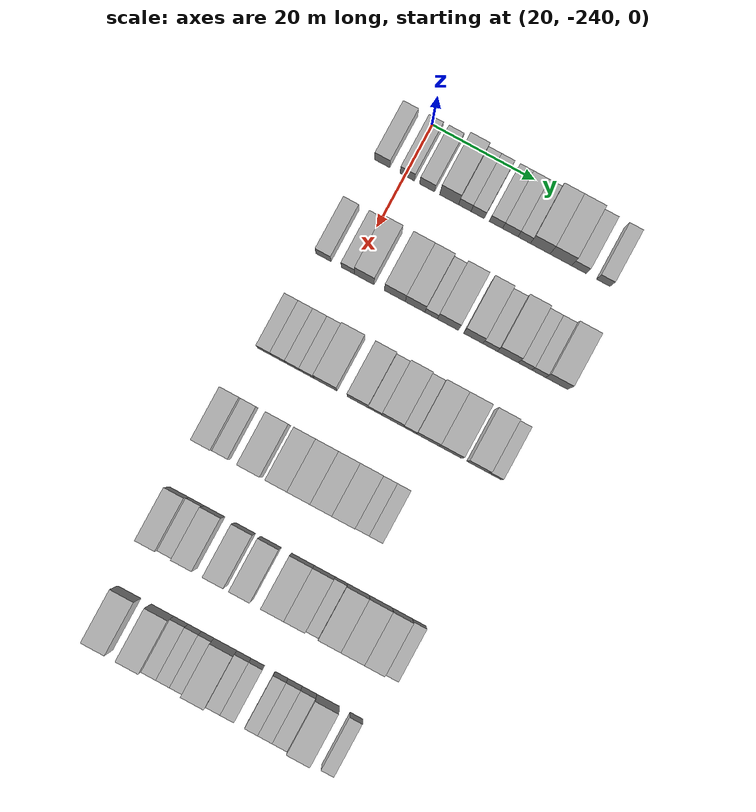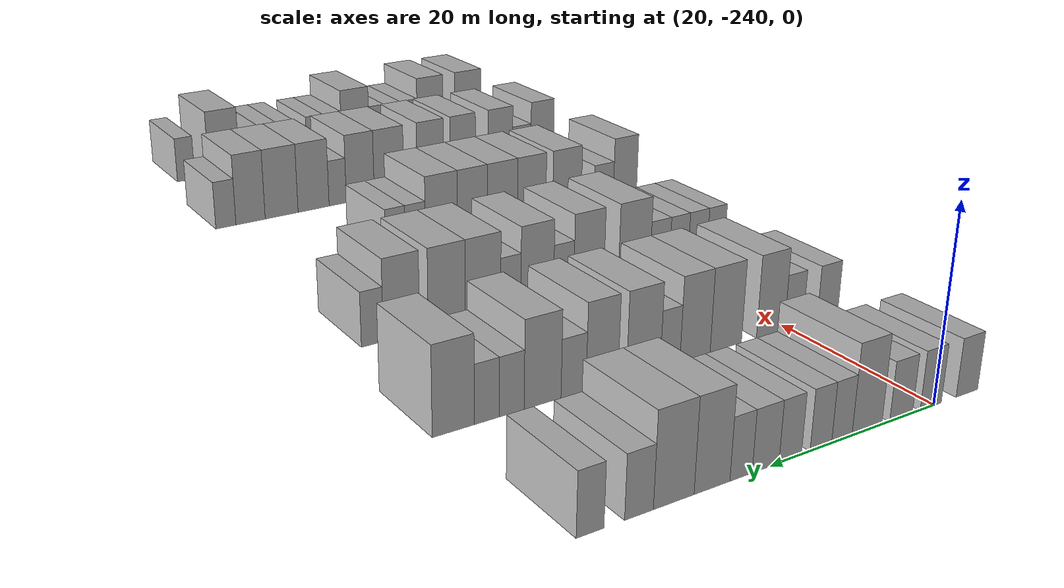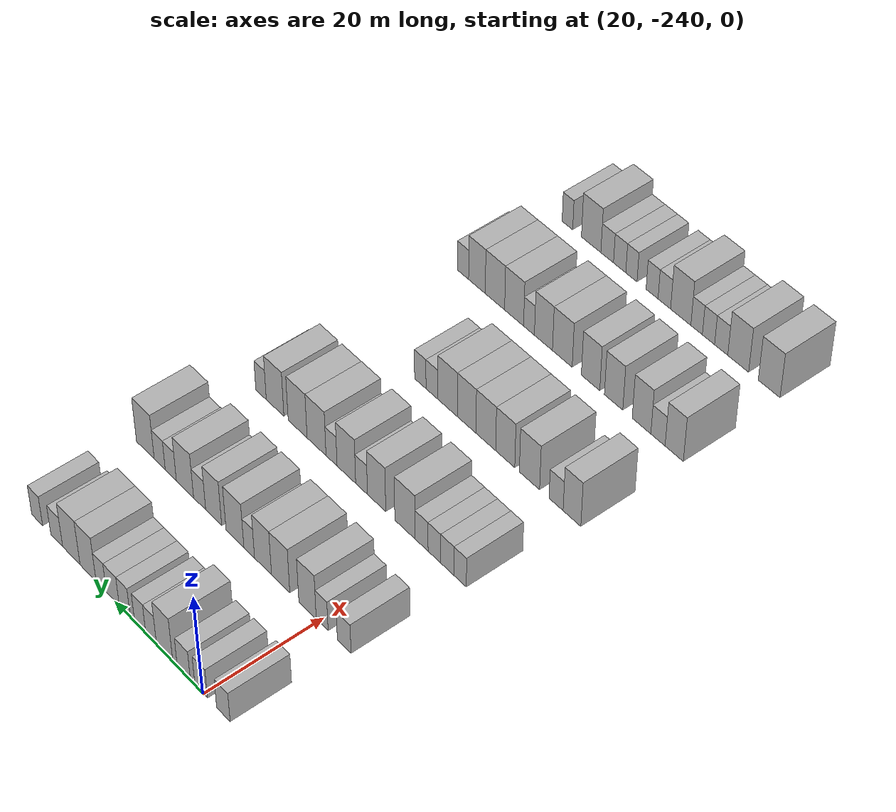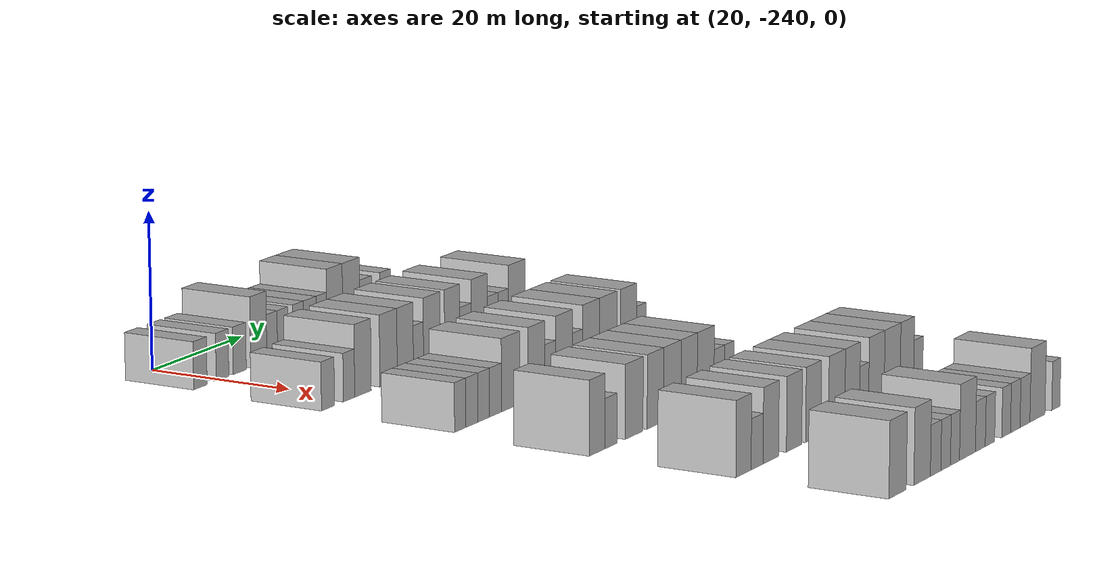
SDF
<sdf version="1.6">
 <world name="default">
  <model name="building_29">
   <static>1</static>
   <pose>25.0000 -244.3878 0 0.000000 0.000000 0.000000</pose>
   <link name="link">
    <pose>0 0 3.00 0 0 0</pose>
    <collision name="collision"><geometry><box><size>10.0000 2.9384 6.0000</size></box></geometry></collision>
    <visual name="visual">
     <cast_shadows>0</cast_shadows>
     <geometry><box><size>10.0000 2.9384 6.0000</size></box></geometry>
     <material>
      <script>
       <uri>model://HANNAS_wall/materials/scripts</uri>
       <uri>model://HANNAS_wall/materials/textures</uri>
       <name>vrc/HANNAS_wall</name>
      </script>
     </material>
    </visual>
   </link>
  </model>
  <model name="building_30">
   <static>1</static>
   <pose>25.0000 -239.5229 0 0.000000 0.000000 0.000000</pose>
   <link name="link">
    <pose>0 0 3.00 0 0 0</pose>
    <collision name="collision"><geometry><box><size>10.0000 2.7915 6.0000</size></box></geometry></collision>
    <visual name="visual">
     <cast_shadows>0</cast_shadows>
     <geometry><box><size>10.0000 2.7915 6.0000</size></box></geometry>
     <material>
      <script>
       <uri>model://HANNAS_wall/materials/scripts</uri>
       <uri>model://HANNAS_wall/materials/textures</uri>
       <name>vrc/HANNAS_wall</name>
      </script>
     </material>
    </visual>
   </link>
  </model>
  <model name="building_31">
   <static>1</static>
   <pose>25.0000 -235.6672 0 0.000000 0.000000 0.000000</pose>
   <link name="link">
    <pose>0 0 3.00 0 0 0</pose>
    <collision name="collision"><geometry><box><size>10.0000 2.9198 6.0000</size></box></geometry></collision>
    <visual name="visual">
     <cast_shadows>0</cast_shadows>
     <geometry><box><size>10.0000 2.9198 6.0000</size></box></geometry>
     <material>
      <script>
       <uri>model://HANNAS_wall/materials/scripts</uri>
       <uri>model://HANNAS_wall/materials/textures</uri>
       <name>vrc/HANNAS_wall</name>
      </script>
     </material>
    </visual>
   </link>
  </model>
  <model name="building_32">
   <static>1</static>
   <pose>25.0000 -231.3683 0 0.000000 0.000000 0.000000</pose>
   <link name="link">
    <pose>0 0 4.50 0 0 0</pose>
    <collision name="collision"><geometry><box><size>10.0000 3.6779 9.0000</size></box></geometry></collision>
    <visual name="visual">
     <cast_shadows>0</cast_shadows>
     <geometry><box><size>10.0000 3.6779 9.0000</size></box></geometry>
     <material>
      <script>
       <uri>model://HANNAS_wall/materials/scripts</uri>
       <uri>model://HANNAS_wall/materials/textures</uri>
       <name>vrc/HANNAS_wall</name>
      </script>
     </material>
    </visual>
   </link>
  </model>
  <model name="building_33">
   <static>1</static>
   <pose>25.0000 -228.3006 0 0.000000 0.000000 0.000000</pose>
   <link name="link">
    <pose>0 0 3.00 0 0 0</pose>
    <collision name="collision"><geometry><box><size>10.0000 2.4575 6.0000</size></box></geometry></collision>
    <visual name="visual">
     <cast_shadows>0</cast_shadows>
     <geometry><box><size>10.0000 2.4575 6.0000</size></box></geometry>
     <material>
      <script>
       <uri>model://HANNAS_wall/materials/scripts</uri>
       <uri>model://HANNAS_wall/materials/textures</uri>
       <name>vrc/HANNAS_wall</name>
      </script>
     </material>
    </visual>
   </link>
  </model>
  <model name="building_34">
   <static>1</static>
   <pose>25.0000 -225.8007 0 0.000000 0.000000 0.000000</pose>
   <link name="link">
    <pose>0 0 3.00 0 0 0</pose>
    <collision name="collision"><geometry><box><size>10.0000 2.5422 6.0000</size></box></geometry></collision>
    <visual name="visual">
     <cast_shadows>0</cast_shadows>
     <geometry><box><size>10.0000 2.5422 6.0000</size></box></geometry>
     <material>
      <script>
       <uri>model://HANNAS_wall/materials/scripts</uri>
       <uri>model://HANNAS_wall/materials/textures</uri>
       <name>vrc/HANNAS_wall</name>
      </script>
     </material>
    </visual>
   </link>
  </model>
  <model name="building_35">
   <static>1</static>
   <pose>25.0000 -222.2456 0 0.000000 0.000000 0.000000</pose>
   <link name="link">
    <pose>0 0 3.00 0 0 0</pose>
    <collision name="collision"><geometry><box><size>10.0000 2.5679 6.0000</size></box></geometry></collision>
    <visual name="visual">
     <cast_shadows>0</cast_shadows>
     <geometry><box><size>10.0000 2.5679 6.0000</size></box></geometry>
     <material>
      <script>
       <uri>model://HANNAS_wall/materials/scripts</uri>
       <uri>model://HANNAS_wall/materials/textures</uri>
       <name>vrc/HANNAS_wall</name>
      </script>
     </material>
    </visual>
   </link>
  </model>
  <model name="building_36">
   <static>1</static>
   <pose>25.0000 -219.4642 0 0.000000 0.000000 0.000000</pose>
   <link name="link">
    <pose>0 0 3.00 0 0 0</pose>
    <collision name="collision"><geometry><box><size>10.0000 2.9951 6.0000</size></box></geometry></collision>
    <visual name="visual">
     <cast_shadows>0</cast_shadows>
     <geometry><box><size>10.0000 2.9951 6.0000</size></box></geometry>
     <material>
      <script>
       <uri>model://HANNAS_wall/materials/scripts</uri>
       <uri>model://HANNAS_wall/materials/textures</uri>
       <name>vrc/HANNAS_wall</name>
      </script>
     </material>
    </visual>
   </link>
  </model>
  <model name="building_37">
   <static>1</static>
   <pose>25.0000 -216.7495 0 0.000000 0.000000 0.000000</pose>
   <link name="link">
    <pose>0 0 3.00 0 0 0</pose>
    <collision name="collision"><geometry><box><size>10.0000 2.4342 6.0000</size></box></geometry></collision>
    <visual name="visual">
     <cast_shadows>0</cast_shadows>
     <geometry><box><size>10.0000 2.4342 6.0000</size></box></geometry>
     <material>
      <script>
       <uri>model://HANNAS_wall/materials/scripts</uri>
       <uri>model://HANNAS_wall/materials/textures</uri>
       <name>vrc/HANNAS_wall</name>
      </script>
     </material>
    </visual>
   </link>
  </model>
  <model name="building_38">
   <static>1</static>
   <pose>25.0000 -213.6285 0 0.000000 0.000000 0.000000</pose>
   <link name="link">
    <pose>0 0 4.50 0 0 0</pose>
    <collision name="collision"><geometry><box><size>10.0000 3.8079 9.0000</size></box></geometry></collision>
    <visual name="visual">
     <cast_shadows>0</cast_shadows>
     <geometry><box><size>10.0000 3.8079 9.0000</size></box></geometry>
     <material>
      <script>
       <uri>model://HANNAS_wall/materials/scripts</uri>
       <uri>model://HANNAS_wall/materials/textures</uri>
       <name>vrc/HANNAS_wall</name>
      </script>
     </material>
    </visual>
   </link>
  </model>
  <model name="building_39">
   <static>1</static>
   <pose>25.0000 -209.6386 0 0.000000 0.000000 0.000000</pose>
   <link name="link">
    <pose>0 0 4.50 0 0 0</pose>
    <collision name="collision"><geometry><box><size>10.0000 4.1720 9.0000</size></box></geometry></collision>
    <visual name="visual">
     <cast_shadows>0</cast_shadows>
     <geometry><box><size>10.0000 4.1720 9.0000</size></box></geometry>
     <material>
      <script>
       <uri>model://HANNAS_wall/materials/scripts</uri>
       <uri>model://HANNAS_wall/materials/textures</uri>
       <name>vrc/HANNAS_wall</name>
      </script>
     </material>
    </visual>
   </link>
  </model>
  <model name="building_40">
   <static>1</static>
   <pose>25.0000 -206.1223 0 0.000000 0.000000 0.000000</pose>
   <link name="link">
    <pose>0 0 3.00 0 0 0</pose>
    <collision name="collision"><geometry><box><size>10.0000 2.8605 6.0000</size></box></geometry></collision>
    <visual name="visual">
     <cast_shadows>0</cast_shadows>
     <geometry><box><size>10.0000 2.8605 6.0000</size></box></geometry>
     <material>
      <script>
       <uri>model://HANNAS_wall/materials/scripts</uri>
       <uri>model://HANNAS_wall/materials/textures</uri>
       <name>vrc/HANNAS_wall</name>
      </script>
     </material>
    </visual>
   </link>
  </model>
  <model name="building_41">
   <static>1</static>
   <pose>25.0000 -201.3653 0 0.000000 0.000000 0.000000</pose>
   <link name="link">
    <pose>0 0 3.00 0 0 0</pose>
    <collision name="collision"><geometry><box><size>10.0000 2.6534 6.0000</size></box></geometry></collision>
    <visual name="visual">
     <cast_shadows>0</cast_shadows>
     <geometry><box><size>10.0000 2.6534 6.0000</size></box></geometry>
     <material>
      <script>
       <uri>model://HANNAS_wall/materials/scripts</uri>
       <uri>model://HANNAS_wall/materials/textures</uri>
       <name>vrc/HANNAS_wall</name>
      </script>
     </material>
    </visual>
   </link>
  </model>
  <model name="building_206">
   <static>1</static>
   <pose>44.0000 -245.5313 0 0.000000 0.000000 0.000000</pose>
   <link name="link">
    <pose>0 0 3.00 0 0 0</pose>
    <collision name="collision"><geometry><box><size>10.0000 2.9362 6.0000</size></box></geometry></collision>
    <visual name="visual">
     <cast_shadows>0</cast_shadows>
     <geometry><box><size>10.0000 2.9362 6.0000</size></box></geometry>
     <material>
      <script>
       <uri>model://HANNAS_wall/materials/scripts</uri>
       <uri>model://HANNAS_wall/materials/textures</uri>
       <name>vrc/HANNAS_wall</name>
      </script>
     </material>
    </visual>
   </link>
  </model>
  <model name="building_207">
   <static>1</static>
   <pose>44.0000 -240.7730 0 0.000000 0.000000 0.000000</pose>
   <link name="link">
    <pose>0 0 3.00 0 0 0</pose>
    <collision name="collision"><geometry><box><size>10.0000 2.5805 6.0000</size></box></geometry></collision>
    <visual name="visual">
     <cast_shadows>0</cast_shadows>
     <geometry><box><size>10.0000 2.5805 6.0000</size></box></geometry>
     <material>
      <script>
       <uri>model://HANNAS_wall/materials/scripts</uri>
       <uri>model://HANNAS_wall/materials/textures</uri>
       <name>vrc/HANNAS_wall</name>
      </script>
     </material>
    </visual>
   </link>
  </model>
  <model name="building_208">
   <static>1</static>
   <pose>44.0000 -237.5835 0 0.000000 0.000000 0.000000</pose>
   <link name="link">
    <pose>0 0 4.50 0 0 0</pose>
    <collision name="collision"><geometry><box><size>10.0000 3.7983 9.0000</size></box></geometry></collision>
    <visual name="visual">
     <cast_shadows>0</cast_shadows>
     <geometry><box><size>10.0000 3.7983 9.0000</size></box></geometry>
     <material>
      <script>
       <uri>model://HANNAS_wall/materials/scripts</uri>
       <uri>model://HANNAS_wall/materials/textures</uri>
       <name>vrc/HANNAS_wall</name>
      </script>
     </material>
    </visual>
   </link>
  </model>
  <model name="building_209">
   <static>1</static>
   <pose>44.0000 -231.6521 0 0.000000 0.000000 0.000000</pose>
   <link name="link">
    <pose>0 0 4.50 0 0 0</pose>
    <collision name="collision"><geometry><box><size>10.0000 4.0646 9.0000</size></box></geometry></collision>
    <visual name="visual">
     <cast_shadows>0</cast_shadows>
     <geometry><box><size>10.0000 4.0646 9.0000</size></box></geometry>
     <material>
      <script>
       <uri>model://HANNAS_wall/materials/scripts</uri>
       <uri>model://HANNAS_wall/materials/textures</uri>
       <name>vrc/HANNAS_wall</name>
      </script>
     </material>
    </visual>
   </link>
  </model>
  <model name="building_210">
   <static>1</static>
   <pose>44.0000 -227.7094 0 0.000000 0.000000 0.000000</pose>
   <link name="link">
    <pose>0 0 4.50 0 0 0</pose>
    <collision name="collision"><geometry><box><size>10.0000 3.8208 9.0000</size></box></geometry></collision>
    <visual name="visual">
     <cast_shadows>0</cast_shadows>
     <geometry><box><size>10.0000 3.8208 9.0000</size></box></geometry>
     <material>
      <script>
       <uri>model://HANNAS_wall/materials/scripts</uri>
       <uri>model://HANNAS_wall/materials/textures</uri>
       <name>vrc/HANNAS_wall</name>
      </script>
     </material>
    </visual>
   </link>
  </model>
  <model name="building_211">
   <static>1</static>
   <pose>44.0000 -224.5858 0 0.000000 0.000000 0.000000</pose>
   <link name="link">
    <pose>0 0 3.00 0 0 0</pose>
    <collision name="collision"><geometry><box><size>10.0000 2.4264 6.0000</size></box></geometry></collision>
    <visual name="visual">
     <cast_shadows>0</cast_shadows>
     <geometry><box><size>10.0000 2.4264 6.0000</size></box></geometry>
     <material>
      <script>
       <uri>model://HANNAS_wall/materials/scripts</uri>
       <uri>model://HANNAS_wall/materials/textures</uri>
       <name>vrc/HANNAS_wall</name>
      </script>
     </material>
    </visual>
   </link>
  </model>
  <model name="building_212">
   <static>1</static>
   <pose>44.0000 -221.3345 0 0.000000 0.000000 0.000000</pose>
   <link name="link">
    <pose>0 0 4.50 0 0 0</pose>
    <collision name="collision"><geometry><box><size>10.0000 4.0762 9.0000</size></box></geometry></collision>
    <visual name="visual">
     <cast_shadows>0</cast_shadows>
     <geometry><box><size>10.0000 4.0762 9.0000</size></box></geometry>
     <material>
      <script>
       <uri>model://HANNAS_wall/materials/scripts</uri>
       <uri>model://HANNAS_wall/materials/textures</uri>
       <name>vrc/HANNAS_wall</name>
      </script>
     </material>
    </visual>
   </link>
  </model>
  <model name="building_213">
   <static>1</static>
   <pose>44.0000 -216.4365 0 0.000000 0.000000 0.000000</pose>
   <link name="link">
    <pose>0 0 4.50 0 0 0</pose>
    <collision name="collision"><geometry><box><size>10.0000 3.7199 9.0000</size></box></geometry></collision>
    <visual name="visual">
     <cast_shadows>0</cast_shadows>
     <geometry><box><size>10.0000 3.7199 9.0000</size></box></geometry>
     <material>
      <script>
       <uri>model://HANNAS_wall/materials/scripts</uri>
       <uri>model://HANNAS_wall/materials/textures</uri>
       <name>vrc/HANNAS_wall</name>
      </script>
     </material>
    </visual>
   </link>
  </model>
  <model name="building_214">
   <static>1</static>
   <pose>44.0000 -213.1633 0 0.000000 0.000000 0.000000</pose>
   <link name="link">
    <pose>0 0 3.00 0 0 0</pose>
    <collision name="collision"><geometry><box><size>10.0000 2.8266 6.0000</size></box></geometry></collision>
    <visual name="visual">
     <cast_shadows>0</cast_shadows>
     <geometry><box><size>10.0000 2.8266 6.0000</size></box></geometry>
     <material>
      <script>
       <uri>model://HANNAS_wall/materials/scripts</uri>
       <uri>model://HANNAS_wall/materials/textures</uri>
       <name>vrc/HANNAS_wall</name>
      </script>
     </material>
    </visual>
   </link>
  </model>
  <model name="building_215">
   <static>1</static>
   <pose>44.0000 -209.7173 0 0.000000 0.000000 0.000000</pose>
   <link name="link">
    <pose>0 0 4.50 0 0 0</pose>
    <collision name="collision"><geometry><box><size>10.0000 4.0653 9.0000</size></box></geometry></collision>
    <visual name="visual">
     <cast_shadows>0</cast_shadows>
     <geometry><box><size>10.0000 4.0653 9.0000</size></box></geometry>
     <material>
      <script>
       <uri>model://HANNAS_wall/materials/scripts</uri>
       <uri>model://HANNAS_wall/materials/textures</uri>
       <name>vrc/HANNAS_wall</name>
      </script>
     </material>
    </visual>
   </link>
  </model>
  <model name="building_216">
   <static>1</static>
   <pose>44.0000 -206.3609 0 0.000000 0.000000 0.000000</pose>
   <link name="link">
    <pose>0 0 3.00 0 0 0</pose>
    <collision name="collision"><geometry><box><size>10.0000 2.6476 6.0000</size></box></geometry></collision>
    <visual name="visual">
     <cast_shadows>0</cast_shadows>
     <geometry><box><size>10.0000 2.6476 6.0000</size></box></geometry>
     <material>
      <script>
       <uri>model://HANNAS_wall/materials/scripts</uri>
       <uri>model://HANNAS_wall/materials/textures</uri>
       <name>vrc/HANNAS_wall</name>
      </script>
     </material>
    </visual>
   </link>
  </model>
  <model name="building_217">
   <static>1</static>
   <pose>44.0000 -203.7158 0 0.000000 0.000000 0.000000</pose>
   <link name="link">
    <pose>0 0 3.00 0 0 0</pose>
    <collision name="collision"><geometry><box><size>10.0000 2.6425 6.0000</size></box></geometry></collision>
    <visual name="visual">
     <cast_shadows>0</cast_shadows>
     <geometry><box><size>10.0000 2.6425 6.0000</size></box></geometry>
     <material>
      <script>
       <uri>model://HANNAS_wall/materials/scripts</uri>
       <uri>model://HANNAS_wall/materials/textures</uri>
       <name>vrc/HANNAS_wall</name>
      </script>
     </material>
    </visual>
   </link>
  </model>
  <model name="building_218">
   <static>1</static>
   <pose>44.0000 -200.2498 0 0.000000 0.000000 0.000000</pose>
   <link name="link">
    <pose>0 0 4.50 0 0 0</pose>
    <collision name="collision"><geometry><box><size>10.0000 4.2895 9.0000</size></box></geometry></collision>
    <visual name="visual">
     <cast_shadows>0</cast_shadows>
     <geometry><box><size>10.0000 4.2895 9.0000</size></box></geometry>
     <material>
      <script>
       <uri>model://HANNAS_wall/materials/scripts</uri>
       <uri>model://HANNAS_wall/materials/textures</uri>
       <name>vrc/HANNAS_wall</name>
      </script>
     </material>
    </visual>
   </link>
  </model>
  <model name="building_377">
   <static>1</static>
   <pose>63.0000 -246.6464 0 0.000000 0.000000 0.000000</pose>
   <link name="link">
    <pose>0 0 3.00 0 0 0</pose>
    <collision name="collision"><geometry><box><size>10.0000 2.6247 6.0000</size></box></geometry></collision>
    <visual name="visual">
     <cast_shadows>0</cast_shadows>
     <geometry><box><size>10.0000 2.6247 6.0000</size></box></geometry>
     <material>
      <script>
       <uri>model://HANNAS_wall/materials/scripts</uri>
       <uri>model://HANNAS_wall/materials/textures</uri>
       <name>vrc/HANNAS_wall</name>
      </script>
     </material>
    </visual>
   </link>
  </model>
  <model name="building_378">
   <static>1</static>
   <pose>63.0000 -243.9276 0 0.000000 0.000000 0.000000</pose>
   <link name="link">
    <pose>0 0 3.00 0 0 0</pose>
    <collision name="collision"><geometry><box><size>10.0000 2.8129 6.0000</size></box></geometry></collision>
    <visual name="visual">
     <cast_shadows>0</cast_shadows>
     <geometry><box><size>10.0000 2.8129 6.0000</size></box></geometry>
     <material>
      <script>
       <uri>model://HANNAS_wall/materials/scripts</uri>
       <uri>model://HANNAS_wall/materials/textures</uri>
       <name>vrc/HANNAS_wall</name>
      </script>
     </material>
    </visual>
   </link>
  </model>
  <model name="building_379">
   <static>1</static>
   <pose>63.0000 -241.1676 0 0.000000 0.000000 0.000000</pose>
   <link name="link">
    <pose>0 0 3.00 0 0 0</pose>
    <collision name="collision"><geometry><box><size>10.0000 2.7072 6.0000</size></box></geometry></collision>
    <visual name="visual">
     <cast_shadows>0</cast_shadows>
     <geometry><box><size>10.0000 2.7072 6.0000</size></box></geometry>
     <material>
      <script>
       <uri>model://HANNAS_wall/materials/scripts</uri>
       <uri>model://HANNAS_wall/materials/textures</uri>
       <name>vrc/HANNAS_wall</name>
      </script>
     </material>
    </visual>
   </link>
  </model>
  <model name="building_380">
   <static>1</static>
   <pose>63.0000 -238.4147 0 0.000000 0.000000 0.000000</pose>
   <link name="link">
    <pose>0 0 3.00 0 0 0</pose>
    <collision name="collision"><geometry><box><size>10.0000 2.7987 6.0000</size></box></geometry></collision>
    <visual name="visual">
     <cast_shadows>0</cast_shadows>
     <geometry><box><size>10.0000 2.7987 6.0000</size></box></geometry>
     <material>
      <script>
       <uri>model://HANNAS_wall/materials/scripts</uri>
       <uri>model://HANNAS_wall/materials/textures</uri>
       <name>vrc/HANNAS_wall</name>
      </script>
     </material>
    </visual>
   </link>
  </model>
  <model name="building_381">
   <static>1</static>
   <pose>63.0000 -234.7998 0 0.000000 0.000000 0.000000</pose>
   <link name="link">
    <pose>0 0 4.50 0 0 0</pose>
    <collision name="collision"><geometry><box><size>10.0000 4.4312 9.0000</size></box></geometry></collision>
    <visual name="visual">
     <cast_shadows>0</cast_shadows>
     <geometry><box><size>10.0000 4.4312 9.0000</size></box></geometry>
     <material>
      <script>
       <uri>model://HANNAS_wall/materials/scripts</uri>
       <uri>model://HANNAS_wall/materials/textures</uri>
       <name>vrc/HANNAS_wall</name>
      </script>
     </material>
    </visual>
   </link>
  </model>
  <model name="building_382">
   <static>1</static>
   <pose>63.0000 -228.5564 0 0.000000 0.000000 0.000000</pose>
   <link name="link">
    <pose>0 0 4.50 0 0 0</pose>
    <collision name="collision"><geometry><box><size>10.0000 4.0556 9.0000</size></box></geometry></collision>
    <visual name="visual">
     <cast_shadows>0</cast_shadows>
     <geometry><box><size>10.0000 4.0556 9.0000</size></box></geometry>
     <material>
      <script>
       <uri>model://HANNAS_wall/materials/scripts</uri>
       <uri>model://HANNAS_wall/materials/textures</uri>
       <name>vrc/HANNAS_wall</name>
      </script>
     </material>
    </visual>
   </link>
  </model>
  <model name="building_383">
   <static>1</static>
   <pose>63.0000 -225.2087 0 0.000000 0.000000 0.000000</pose>
   <link name="link">
    <pose>0 0 3.00 0 0 0</pose>
    <collision name="collision"><geometry><box><size>10.0000 2.6397 6.0000</size></box></geometry></collision>
    <visual name="visual">
     <cast_shadows>0</cast_shadows>
     <geometry><box><size>10.0000 2.6397 6.0000</size></box></geometry>
     <material>
      <script>
       <uri>model://HANNAS_wall/materials/scripts</uri>
       <uri>model://HANNAS_wall/materials/textures</uri>
       <name>vrc/HANNAS_wall</name>
      </script>
     </material>
    </visual>
   </link>
  </model>
  <model name="building_384">
   <static>1</static>
   <pose>63.0000 -221.7857 0 0.000000 0.000000 0.000000</pose>
   <link name="link">
    <pose>0 0 4.50 0 0 0</pose>
    <collision name="collision"><geometry><box><size>10.0000 4.2063 9.0000</size></box></geometry></collision>
    <visual name="visual">
     <cast_shadows>0</cast_shadows>
     <geometry><box><size>10.0000 4.2063 9.0000</size></box></geometry>
     <material>
      <script>
       <uri>model://HANNAS_wall/materials/scripts</uri>
       <uri>model://HANNAS_wall/materials/textures</uri>
       <name>vrc/HANNAS_wall</name>
      </script>
     </material>
    </visual>
   </link>
  </model>
  <model name="building_385">
   <static>1</static>
   <pose>63.0000 -218.4253 0 0.000000 0.000000 0.000000</pose>
   <link name="link">
    <pose>0 0 3.00 0 0 0</pose>
    <collision name="collision"><geometry><box><size>10.0000 2.5146 6.0000</size></box></geometry></collision>
    <visual name="visual">
     <cast_shadows>0</cast_shadows>
     <geometry><box><size>10.0000 2.5146 6.0000</size></box></geometry>
     <material>
      <script>
       <uri>model://HANNAS_wall/materials/scripts</uri>
       <uri>model://HANNAS_wall/materials/textures</uri>
       <name>vrc/HANNAS_wall</name>
      </script>
     </material>
    </visual>
   </link>
  </model>
  <model name="building_386">
   <static>1</static>
   <pose>63.0000 -214.9909 0 0.000000 0.000000 0.000000</pose>
   <link name="link">
    <pose>0 0 4.50 0 0 0</pose>
    <collision name="collision"><geometry><box><size>10.0000 4.3542 9.0000</size></box></geometry></collision>
    <visual name="visual">
     <cast_shadows>0</cast_shadows>
     <geometry><box><size>10.0000 4.3542 9.0000</size></box></geometry>
     <material>
      <script>
       <uri>model://HANNAS_wall/materials/scripts</uri>
       <uri>model://HANNAS_wall/materials/textures</uri>
       <name>vrc/HANNAS_wall</name>
      </script>
     </material>
    </visual>
   </link>
  </model>
  <model name="building_387">
   <static>1</static>
   <pose>63.0000 -210.6152 0 0.000000 0.000000 0.000000</pose>
   <link name="link">
    <pose>0 0 4.50 0 0 0</pose>
    <collision name="collision"><geometry><box><size>10.0000 4.3971 9.0000</size></box></geometry></collision>
    <visual name="visual">
     <cast_shadows>0</cast_shadows>
     <geometry><box><size>10.0000 4.3971 9.0000</size></box></geometry>
     <material>
      <script>
       <uri>model://HANNAS_wall/materials/scripts</uri>
       <uri>model://HANNAS_wall/materials/textures</uri>
       <name>vrc/HANNAS_wall</name>
      </script>
     </material>
    </visual>
   </link>
  </model>
  <model name="building_388">
   <static>1</static>
   <pose>63.0000 -205.3384 0 0.000000 0.000000 0.000000</pose>
   <link name="link">
    <pose>0 0 4.50 0 0 0</pose>
    <collision name="collision"><geometry><box><size>10.0000 4.1566 9.0000</size></box></geometry></collision>
    <visual name="visual">
     <cast_shadows>0</cast_shadows>
     <geometry><box><size>10.0000 4.1566 9.0000</size></box></geometry>
     <material>
      <script>
       <uri>model://HANNAS_wall/materials/scripts</uri>
       <uri>model://HANNAS_wall/materials/textures</uri>
       <name>vrc/HANNAS_wall</name>
      </script>
     </material>
    </visual>
   </link>
  </model>
  <model name="building_389">
   <static>1</static>
   <pose>63.0000 -202.0230 0 0.000000 0.000000 0.000000</pose>
   <link name="link">
    <pose>0 0 3.00 0 0 0</pose>
    <collision name="collision"><geometry><box><size>10.0000 2.4741 6.0000</size></box></geometry></collision>
    <visual name="visual">
     <cast_shadows>0</cast_shadows>
     <geometry><box><size>10.0000 2.4741 6.0000</size></box></geometry>
     <material>
      <script>
       <uri>model://HANNAS_wall/materials/scripts</uri>
       <uri>model://HANNAS_wall/materials/textures</uri>
       <name>vrc/HANNAS_wall</name>
      </script>
     </material>
    </visual>
   </link>
  </model>
  <model name="building_541">
   <static>1</static>
   <pose>82.0000 -247.8365 0 0.000000 0.000000 0.000000</pose>
   <link name="link">
    <pose>0 0 4.50 0 0 0</pose>
    <collision name="collision"><geometry><box><size>10.0000 3.6970 9.0000</size></box></geometry></collision>
    <visual name="visual">
     <cast_shadows>0</cast_shadows>
     <geometry><box><size>10.0000 3.6970 9.0000</size></box></geometry>
     <material>
      <script>
       <uri>model://HANNAS_wall/materials/scripts</uri>
       <uri>model://HANNAS_wall/materials/textures</uri>
       <name>vrc/HANNAS_wall</name>
      </script>
     </material>
    </visual>
   </link>
  </model>
  <model name="building_542">
   <static>1</static>
   <pose>82.0000 -244.5044 0 0.000000 0.000000 0.000000</pose>
   <link name="link">
    <pose>0 0 3.00 0 0 0</pose>
    <collision name="collision"><geometry><box><size>10.0000 2.9673 6.0000</size></box></geometry></collision>
    <visual name="visual">
     <cast_shadows>0</cast_shadows>
     <geometry><box><size>10.0000 2.9673 6.0000</size></box></geometry>
     <material>
      <script>
       <uri>model://HANNAS_wall/materials/scripts</uri>
       <uri>model://HANNAS_wall/materials/textures</uri>
       <name>vrc/HANNAS_wall</name>
      </script>
     </material>
    </visual>
   </link>
  </model>
  <model name="building_543">
   <static>1</static>
   <pose>82.0000 -238.8582 0 0.000000 0.000000 0.000000</pose>
   <link name="link">
    <pose>0 0 4.50 0 0 0</pose>
    <collision name="collision"><geometry><box><size>10.0000 4.3251 9.0000</size></box></geometry></collision>
    <visual name="visual">
     <cast_shadows>0</cast_shadows>
     <geometry><box><size>10.0000 4.3251 9.0000</size></box></geometry>
     <material>
      <script>
       <uri>model://HANNAS_wall/materials/scripts</uri>
       <uri>model://HANNAS_wall/materials/textures</uri>
       <name>vrc/HANNAS_wall</name>
      </script>
     </material>
    </visual>
   </link>
  </model>
  <model name="building_544">
   <static>1</static>
   <pose>82.0000 -233.6265 0 0.000000 0.000000 0.000000</pose>
   <link name="link">
    <pose>0 0 4.50 0 0 0</pose>
    <collision name="collision"><geometry><box><size>10.0000 4.1382 9.0000</size></box></geometry></collision>
    <visual name="visual">
     <cast_shadows>0</cast_shadows>
     <geometry><box><size>10.0000 4.1382 9.0000</size></box></geometry>
     <material>
      <script>
       <uri>model://HANNAS_wall/materials/scripts</uri>
       <uri>model://HANNAS_wall/materials/textures</uri>
       <name>vrc/HANNAS_wall</name>
      </script>
     </material>
    </visual>
   </link>
  </model>
  <model name="building_545">
   <static>1</static>
   <pose>82.0000 -229.3962 0 0.000000 0.000000 0.000000</pose>
   <link name="link">
    <pose>0 0 4.50 0 0 0</pose>
    <collision name="collision"><geometry><box><size>10.0000 4.3225 9.0000</size></box></geometry></collision>
    <visual name="visual">
     <cast_shadows>0</cast_shadows>
     <geometry><box><size>10.0000 4.3225 9.0000</size></box></geometry>
     <material>
      <script>
       <uri>model://HANNAS_wall/materials/scripts</uri>
       <uri>model://HANNAS_wall/materials/textures</uri>
       <name>vrc/HANNAS_wall</name>
      </script>
     </material>
    </visual>
   </link>
  </model>
  <model name="building_546">
   <static>1</static>
   <pose>82.0000 -225.1750 0 0.000000 0.000000 0.000000</pose>
   <link name="link">
    <pose>0 0 4.50 0 0 0</pose>
    <collision name="collision"><geometry><box><size>10.0000 4.1199 9.0000</size></box></geometry></collision>
    <visual name="visual">
     <cast_shadows>0</cast_shadows>
     <geometry><box><size>10.0000 4.1199 9.0000</size></box></geometry>
     <material>
      <script>
       <uri>model://HANNAS_wall/materials/scripts</uri>
       <uri>model://HANNAS_wall/materials/textures</uri>
       <name>vrc/HANNAS_wall</name>
      </script>
     </material>
    </visual>
   </link>
  </model>
  <model name="building_547">
   <static>1</static>
   <pose>82.0000 -220.9366 0 0.000000 0.000000 0.000000</pose>
   <link name="link">
    <pose>0 0 4.50 0 0 0</pose>
    <collision name="collision"><geometry><box><size>10.0000 4.3569 9.0000</size></box></geometry></collision>
    <visual name="visual">
     <cast_shadows>0</cast_shadows>
     <geometry><box><size>10.0000 4.3569 9.0000</size></box></geometry>
     <material>
      <script>
       <uri>model://HANNAS_wall/materials/scripts</uri>
       <uri>model://HANNAS_wall/materials/textures</uri>
       <name>vrc/HANNAS_wall</name>
      </script>
     </material>
    </visual>
   </link>
  </model>
  <model name="building_548">
   <static>1</static>
   <pose>82.0000 -217.4150 0 0.000000 0.000000 0.000000</pose>
   <link name="link">
    <pose>0 0 3.00 0 0 0</pose>
    <collision name="collision"><geometry><box><size>10.0000 2.6863 6.0000</size></box></geometry></collision>
    <visual name="visual">
     <cast_shadows>0</cast_shadows>
     <geometry><box><size>10.0000 2.6863 6.0000</size></box></geometry>
     <material>
      <script>
       <uri>model://HANNAS_wall/materials/scripts</uri>
       <uri>model://HANNAS_wall/materials/textures</uri>
       <name>vrc/HANNAS_wall</name>
      </script>
     </material>
    </visual>
   </link>
  </model>
  <model name="building_549">
   <static>1</static>
   <pose>82.0000 -214.7778 0 0.000000 0.000000 0.000000</pose>
   <link name="link">
    <pose>0 0 3.00 0 0 0</pose>
    <collision name="collision"><geometry><box><size>10.0000 2.5880 6.0000</size></box></geometry></collision>
    <visual name="visual">
     <cast_shadows>0</cast_shadows>
     <geometry><box><size>10.0000 2.5880 6.0000</size></box></geometry>
     <material>
      <script>
       <uri>model://HANNAS_wall/materials/scripts</uri>
       <uri>model://HANNAS_wall/materials/textures</uri>
       <name>vrc/HANNAS_wall</name>
      </script>
     </material>
    </visual>
   </link>
  </model>
  <model name="building_708">
   <static>1</static>
   <pose>101.0000 -247.9169 0 0.000000 0.000000 0.000000</pose>
   <link name="link">
    <pose>0 0 4.50 0 0 0</pose>
    <collision name="collision"><geometry><box><size>10.0000 3.7783 9.0000</size></box></geometry></collision>
    <visual name="visual">
     <cast_shadows>0</cast_shadows>
     <geometry><box><size>10.0000 3.7783 9.0000</size></box></geometry>
     <material>
      <script>
       <uri>model://HANNAS_wall/materials/scripts</uri>
       <uri>model://HANNAS_wall/materials/textures</uri>
       <name>vrc/HANNAS_wall</name>
      </script>
     </material>
    </visual>
   </link>
  </model>
  <model name="building_709">
   <static>1</static>
   <pose>101.0000 -244.5372 0 0.000000 0.000000 0.000000</pose>
   <link name="link">
    <pose>0 0 3.00 0 0 0</pose>
    <collision name="collision"><geometry><box><size>10.0000 2.9810 6.0000</size></box></geometry></collision>
    <visual name="visual">
     <cast_shadows>0</cast_shadows>
     <geometry><box><size>10.0000 2.9810 6.0000</size></box></geometry>
     <material>
      <script>
       <uri>model://HANNAS_wall/materials/scripts</uri>
       <uri>model://HANNAS_wall/materials/textures</uri>
       <name>vrc/HANNAS_wall</name>
      </script>
     </material>
    </visual>
   </link>
  </model>
  <model name="building_710">
   <static>1</static>
   <pose>101.0000 -241.0789 0 0.000000 0.000000 0.000000</pose>
   <link name="link">
    <pose>0 0 4.50 0 0 0</pose>
    <collision name="collision"><geometry><box><size>10.0000 3.9354 9.0000</size></box></geometry></collision>
    <visual name="visual">
     <cast_shadows>0</cast_shadows>
     <geometry><box><size>10.0000 3.9354 9.0000</size></box></geometry>
     <material>
      <script>
       <uri>model://HANNAS_wall/materials/scripts</uri>
       <uri>model://HANNAS_wall/materials/textures</uri>
       <name>vrc/HANNAS_wall</name>
      </script>
     </material>
    </visual>
   </link>
  </model>
  <model name="building_711">
   <static>1</static>
   <pose>101.0000 -235.1406 0 0.000000 0.000000 0.000000</pose>
   <link name="link">
    <pose>0 0 4.50 0 0 0</pose>
    <collision name="collision"><geometry><box><size>10.0000 3.9413 9.0000</size></box></geometry></collision>
    <visual name="visual">
     <cast_shadows>0</cast_shadows>
     <geometry><box><size>10.0000 3.9413 9.0000</size></box></geometry>
     <material>
      <script>
       <uri>model://HANNAS_wall/materials/scripts</uri>
       <uri>model://HANNAS_wall/materials/textures</uri>
       <name>vrc/HANNAS_wall</name>
      </script>
     </material>
    </visual>
   </link>
  </model>
  <model name="building_712">
   <static>1</static>
   <pose>101.0000 -230.1703 0 0.000000 0.000000 0.000000</pose>
   <link name="link">
    <pose>0 0 4.50 0 0 0</pose>
    <collision name="collision"><geometry><box><size>10.0000 3.9993 9.0000</size></box></geometry></collision>
    <visual name="visual">
     <cast_shadows>0</cast_shadows>
     <geometry><box><size>10.0000 3.9993 9.0000</size></box></geometry>
     <material>
      <script>
       <uri>model://HANNAS_wall/materials/scripts</uri>
       <uri>model://HANNAS_wall/materials/textures</uri>
       <name>vrc/HANNAS_wall</name>
      </script>
     </material>
    </visual>
   </link>
  </model>
  <model name="building_713">
   <static>1</static>
   <pose>101.0000 -223.9971 0 0.000000 0.000000 0.000000</pose>
   <link name="link">
    <pose>0 0 4.50 0 0 0</pose>
    <collision name="collision"><geometry><box><size>10.0000 4.3471 9.0000</size></box></geometry></collision>
    <visual name="visual">
     <cast_shadows>0</cast_shadows>
     <geometry><box><size>10.0000 4.3471 9.0000</size></box></geometry>
     <material>
      <script>
       <uri>model://HANNAS_wall/materials/scripts</uri>
       <uri>model://HANNAS_wall/materials/textures</uri>
       <name>vrc/HANNAS_wall</name>
      </script>
     </material>
    </visual>
   </link>
  </model>
  <model name="building_714">
   <static>1</static>
   <pose>101.0000 -219.8160 0 0.000000 0.000000 0.000000</pose>
   <link name="link">
    <pose>0 0 4.50 0 0 0</pose>
    <collision name="collision"><geometry><box><size>10.0000 4.0152 9.0000</size></box></geometry></collision>
    <visual name="visual">
     <cast_shadows>0</cast_shadows>
     <geometry><box><size>10.0000 4.0152 9.0000</size></box></geometry>
     <material>
      <script>
       <uri>model://HANNAS_wall/materials/scripts</uri>
       <uri>model://HANNAS_wall/materials/textures</uri>
       <name>vrc/HANNAS_wall</name>
      </script>
     </material>
    </visual>
   </link>
  </model>
  <model name="building_715">
   <static>1</static>
   <pose>101.0000 -216.5901 0 0.000000 0.000000 0.000000</pose>
   <link name="link">
    <pose>0 0 3.00 0 0 0</pose>
    <collision name="collision"><geometry><box><size>10.0000 2.4366 6.0000</size></box></geometry></collision>
    <visual name="visual">
     <cast_shadows>0</cast_shadows>
     <geometry><box><size>10.0000 2.4366 6.0000</size></box></geometry>
     <material>
      <script>
       <uri>model://HANNAS_wall/materials/scripts</uri>
       <uri>model://HANNAS_wall/materials/textures</uri>
       <name>vrc/HANNAS_wall</name>
      </script>
     </material>
    </visual>
   </link>
  </model>
  <model name="building_716">
   <static>1</static>
   <pose>101.0000 -213.2271 0 0.000000 0.000000 0.000000</pose>
   <link name="link">
    <pose>0 0 4.50 0 0 0</pose>
    <collision name="collision"><geometry><box><size>10.0000 4.2894 9.0000</size></box></geometry></collision>
    <visual name="visual">
     <cast_shadows>0</cast_shadows>
     <geometry><box><size>10.0000 4.2894 9.0000</size></box></geometry>
     <material>
      <script>
       <uri>model://HANNAS_wall/materials/scripts</uri>
       <uri>model://HANNAS_wall/materials/textures</uri>
       <name>vrc/HANNAS_wall</name>
      </script>
     </material>
    </visual>
   </link>
  </model>
  <model name="building_717">
   <static>1</static>
   <pose>101.0000 -208.8637 0 0.000000 0.000000 0.000000</pose>
   <link name="link">
    <pose>0 0 4.50 0 0 0</pose>
    <collision name="collision"><geometry><box><size>10.0000 4.4374 9.0000</size></box></geometry></collision>
    <visual name="visual">
     <cast_shadows>0</cast_shadows>
     <geometry><box><size>10.0000 4.4374 9.0000</size></box></geometry>
     <material>
      <script>
       <uri>model://HANNAS_wall/materials/scripts</uri>
       <uri>model://HANNAS_wall/materials/textures</uri>
       <name>vrc/HANNAS_wall</name>
      </script>
     </material>
    </visual>
   </link>
  </model>
  <model name="building_718">
   <static>1</static>
   <pose>101.0000 -204.7215 0 0.000000 0.000000 0.000000</pose>
   <link name="link">
    <pose>0 0 4.50 0 0 0</pose>
    <collision name="collision"><geometry><box><size>10.0000 3.8471 9.0000</size></box></geometry></collision>
    <visual name="visual">
     <cast_shadows>0</cast_shadows>
     <geometry><box><size>10.0000 3.8471 9.0000</size></box></geometry>
     <material>
      <script>
       <uri>model://HANNAS_wall/materials/scripts</uri>
       <uri>model://HANNAS_wall/materials/textures</uri>
       <name>vrc/HANNAS_wall</name>
      </script>
     </material>
    </visual>
   </link>
  </model>
  <model name="building_719">
   <static>1</static>
   <pose>101.0000 -201.4974 0 0.000000 0.000000 0.000000</pose>
   <link name="link">
    <pose>0 0 3.00 0 0 0</pose>
    <collision name="collision"><geometry><box><size>10.0000 2.6011 6.0000</size></box></geometry></collision>
    <visual name="visual">
     <cast_shadows>0</cast_shadows>
     <geometry><box><size>10.0000 2.6011 6.0000</size></box></geometry>
     <material>
      <script>
       <uri>model://HANNAS_wall/materials/scripts</uri>
       <uri>model://HANNAS_wall/materials/textures</uri>
       <name>vrc/HANNAS_wall</name>
      </script>
     </material>
    </visual>
   </link>
  </model>
  <model name="building_886">
   <static>1</static>
   <pose>120.0000 -247.3206 0 0.000000 0.000000 0.000000</pose>
   <link name="link">
    <pose>0 0 4.50 0 0 0</pose>
    <collision name="collision"><geometry><box><size>10.0000 4.4981 9.0000</size></box></geometry></collision>
    <visual name="visual">
     <cast_shadows>0</cast_shadows>
     <geometry><box><size>10.0000 4.4981 9.0000</size></box></geometry>
     <material>
      <script>
       <uri>model://HANNAS_wall/materials/scripts</uri>
       <uri>model://HANNAS_wall/materials/textures</uri>
       <name>vrc/HANNAS_wall</name>
      </script>
     </material>
    </visual>
   </link>
  </model>
  <model name="building_887">
   <static>1</static>
   <pose>120.0000 -240.8822 0 0.000000 0.000000 0.000000</pose>
   <link name="link">
    <pose>0 0 4.50 0 0 0</pose>
    <collision name="collision"><geometry><box><size>10.0000 4.3787 9.0000</size></box></geometry></collision>
    <visual name="visual">
     <cast_shadows>0</cast_shadows>
     <geometry><box><size>10.0000 4.3787 9.0000</size></box></geometry>
     <material>
      <script>
       <uri>model://HANNAS_wall/materials/scripts</uri>
       <uri>model://HANNAS_wall/materials/textures</uri>
       <name>vrc/HANNAS_wall</name>
      </script>
     </material>
    </visual>
   </link>
  </model>
  <model name="building_888">
   <static>1</static>
   <pose>120.0000 -237.2977 0 0.000000 0.000000 0.000000</pose>
   <link name="link">
    <pose>0 0 3.00 0 0 0</pose>
    <collision name="collision"><geometry><box><size>10.0000 2.7904 6.0000</size></box></geometry></collision>
    <visual name="visual">
     <cast_shadows>0</cast_shadows>
     <geometry><box><size>10.0000 2.7904 6.0000</size></box></geometry>
     <material>
      <script>
       <uri>model://HANNAS_wall/materials/scripts</uri>
       <uri>model://HANNAS_wall/materials/textures</uri>
       <name>vrc/HANNAS_wall</name>
      </script>
     </material>
    </visual>
   </link>
  </model>
  <model name="building_889">
   <static>1</static>
   <pose>120.0000 -234.6020 0 0.000000 0.000000 0.000000</pose>
   <link name="link">
    <pose>0 0 3.00 0 0 0</pose>
    <collision name="collision"><geometry><box><size>10.0000 2.6011 6.0000</size></box></geometry></collision>
    <visual name="visual">
     <cast_shadows>0</cast_shadows>
     <geometry><box><size>10.0000 2.6011 6.0000</size></box></geometry>
     <material>
      <script>
       <uri>model://HANNAS_wall/materials/scripts</uri>
       <uri>model://HANNAS_wall/materials/textures</uri>
       <name>vrc/HANNAS_wall</name>
      </script>
     </material>
    </visual>
   </link>
  </model>
  <model name="building_890">
   <static>1</static>
   <pose>120.0000 -232.0668 0 0.000000 0.000000 0.000000</pose>
   <link name="link">
    <pose>0 0 3.00 0 0 0</pose>
    <collision name="collision"><geometry><box><size>10.0000 2.4692 6.0000</size></box></geometry></collision>
    <visual name="visual">
     <cast_shadows>0</cast_shadows>
     <geometry><box><size>10.0000 2.4692 6.0000</size></box></geometry>
     <material>
      <script>
       <uri>model://HANNAS_wall/materials/scripts</uri>
       <uri>model://HANNAS_wall/materials/textures</uri>
       <name>vrc/HANNAS_wall</name>
      </script>
     </material>
    </visual>
   </link>
  </model>
  <model name="building_891">
   <static>1</static>
   <pose>120.0000 -228.6385 0 0.000000 0.000000 0.000000</pose>
   <link name="link">
    <pose>0 0 4.50 0 0 0</pose>
    <collision name="collision"><geometry><box><size>10.0000 4.3876 9.0000</size></box></geometry></collision>
    <visual name="visual">
     <cast_shadows>0</cast_shadows>
     <geometry><box><size>10.0000 4.3876 9.0000</size></box></geometry>
     <material>
      <script>
       <uri>model://HANNAS_wall/materials/scripts</uri>
       <uri>model://HANNAS_wall/materials/textures</uri>
       <name>vrc/HANNAS_wall</name>
      </script>
     </material>
    </visual>
   </link>
  </model>
  <model name="building_892">
   <static>1</static>
   <pose>120.0000 -225.0770 0 0.000000 0.000000 0.000000</pose>
   <link name="link">
    <pose>0 0 3.00 0 0 0</pose>
    <collision name="collision"><geometry><box><size>10.0000 2.7354 6.0000</size></box></geometry></collision>
    <visual name="visual">
     <cast_shadows>0</cast_shadows>
     <geometry><box><size>10.0000 2.7354 6.0000</size></box></geometry>
     <material>
      <script>
       <uri>model://HANNAS_wall/materials/scripts</uri>
       <uri>model://HANNAS_wall/materials/textures</uri>
       <name>vrc/HANNAS_wall</name>
      </script>
     </material>
    </visual>
   </link>
  </model>
  <model name="building_893">
   <static>1</static>
   <pose>120.0000 -222.3924 0 0.000000 0.000000 0.000000</pose>
   <link name="link">
    <pose>0 0 3.00 0 0 0</pose>
    <collision name="collision"><geometry><box><size>10.0000 2.6337 6.0000</size></box></geometry></collision>
    <visual name="visual">
     <cast_shadows>0</cast_shadows>
     <geometry><box><size>10.0000 2.6337 6.0000</size></box></geometry>
     <material>
      <script>
       <uri>model://HANNAS_wall/materials/scripts</uri>
       <uri>model://HANNAS_wall/materials/textures</uri>
       <name>vrc/HANNAS_wall</name>
      </script>
     </material>
    </visual>
   </link>
  </model>
  <model name="building_894">
   <static>1</static>
   <pose>120.0000 -217.8277 0 0.000000 0.000000 0.000000</pose>
   <link name="link">
    <pose>0 0 3.00 0 0 0</pose>
    <collision name="collision"><geometry><box><size>10.0000 2.4958 6.0000</size></box></geometry></collision>
    <visual name="visual">
     <cast_shadows>0</cast_shadows>
     <geometry><box><size>10.0000 2.4958 6.0000</size></box></geometry>
     <material>
      <script>
       <uri>model://HANNAS_wall/materials/scripts</uri>
       <uri>model://HANNAS_wall/materials/textures</uri>
       <name>vrc/HANNAS_wall</name>
      </script>
     </material>
    </visual>
   </link>
  </model>
  <model name="building_895">
   <static>1</static>
   <pose>120.0000 -215.2091 0 0.000000 0.000000 0.000000</pose>
   <link name="link">
    <pose>0 0 3.00 0 0 0</pose>
    <collision name="collision"><geometry><box><size>10.0000 2.7414 6.0000</size></box></geometry></collision>
    <visual name="visual">
     <cast_shadows>0</cast_shadows>
     <geometry><box><size>10.0000 2.7414 6.0000</size></box></geometry>
     <material>
      <script>
       <uri>model://HANNAS_wall/materials/scripts</uri>
       <uri>model://HANNAS_wall/materials/textures</uri>
       <name>vrc/HANNAS_wall</name>
      </script>
     </material>
    </visual>
   </link>
  </model>
  <model name="building_896">
   <static>1</static>
   <pose>120.0000 -212.4145 0 0.000000 0.000000 0.000000</pose>
   <link name="link">
    <pose>0 0 3.00 0 0 0</pose>
    <collision name="collision"><geometry><box><size>10.0000 2.8479 6.0000</size></box></geometry></collision>
    <visual name="visual">
     <cast_shadows>0</cast_shadows>
     <geometry><box><size>10.0000 2.8479 6.0000</size></box></geometry>
     <material>
      <script>
       <uri>model://HANNAS_wall/materials/scripts</uri>
       <uri>model://HANNAS_wall/materials/textures</uri>
       <name>vrc/HANNAS_wall</name>
      </script>
     </material>
    </visual>
   </link>
  </model>
  <model name="building_897">
   <static>1</static>
   <pose>120.0000 -208.7838 0 0.000000 0.000000 0.000000</pose>
   <link name="link">
    <pose>0 0 4.50 0 0 0</pose>
    <collision name="collision"><geometry><box><size>10.0000 4.4135 9.0000</size></box></geometry></collision>
    <visual name="visual">
     <cast_shadows>0</cast_shadows>
     <geometry><box><size>10.0000 4.4135 9.0000</size></box></geometry>
     <material>
      <script>
       <uri>model://HANNAS_wall/materials/scripts</uri>
       <uri>model://HANNAS_wall/materials/textures</uri>
       <name>vrc/HANNAS_wall</name>
      </script>
     </material>
    </visual>
   </link>
  </model>
  <model name="building_898">
   <static>1</static>
   <pose>120.0000 -203.3608 0 0.000000 0.000000 0.000000</pose>
   <link name="link">
    <pose>0 0 3.00 0 0 0</pose>
    <collision name="collision"><geometry><box><size>10.0000 2.4325 6.0000</size></box></geometry></collision>
    <visual name="visual">
     <cast_shadows>0</cast_shadows>
     <geometry><box><size>10.0000 2.4325 6.0000</size></box></geometry>
     <material>
      <script>
       <uri>model://HANNAS_wall/materials/scripts</uri>
       <uri>model://HANNAS_wall/materials/textures</uri>
       <name>vrc/HANNAS_wall</name>
      </script>
     </material>
    </visual>
   </link>
  </model>
 </world>
</sdf>
